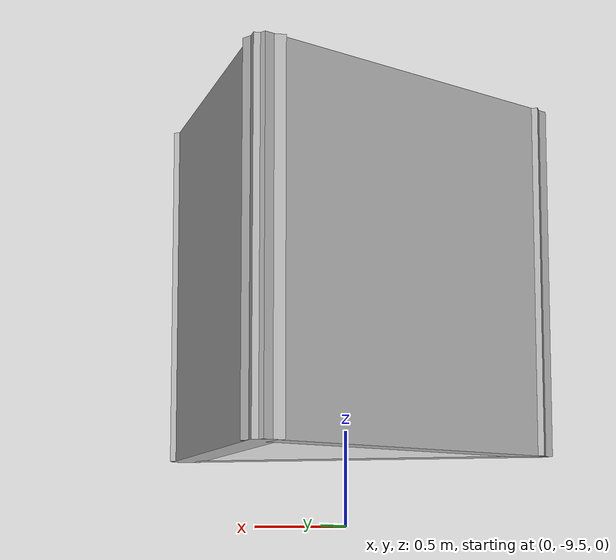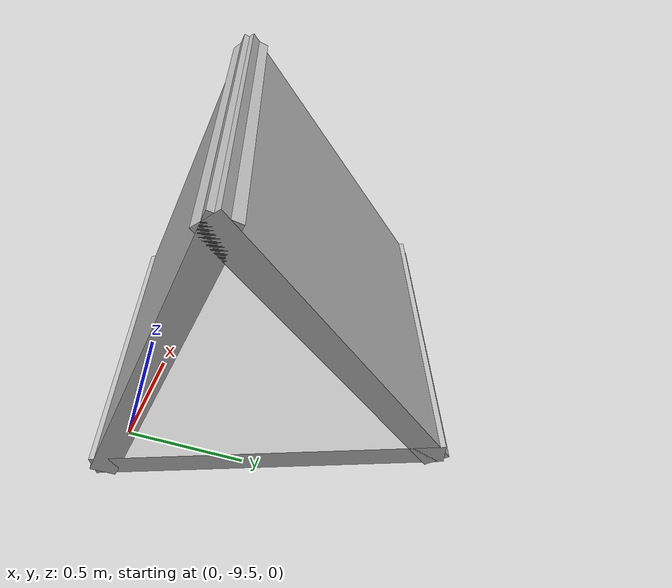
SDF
<?xml version='1.0'?>
<sdf version='1.7'>
  <model name='gun_man'>
    <pose>-0.057195 -4.78727 0 0 -0 0</pose>
    <link name='Wall_16'>
      <collision name='Wall_16_Collision'>
        <geometry>
          <box>
            <size>2 0.15 1.8</size>
          </box>
        </geometry>
        <pose>0 0 1.25 0 -0 0</pose>
      </collision>
      <visual name='Wall_16_Visual'>
        <pose>0 0 1.25 0 -0 0</pose>
        <geometry>
          <box>
            <size>2 0.15 1.8</size>
          </box>
        </geometry>
        <material>
          <script>
            <uri>model://gun_man/materials/scripts</uri>
            <uri>model://gun_man/materials/textures</uri>
            <name>Mark/Diffuse_h</name>
          </script>
        </material>
        <meta>
          <layer>0</layer>
        </meta>
      </visual>
      <pose>-0.4625 -3.88374 0 0 -0 -2.0944</pose>
    </link>
    <link name='Wall_17'>
      <collision name='Wall_17_Collision'>
        <geometry>
          <box>
            <size>2 0.15 1.8</size>
          </box>
        </geometry>
        <pose>0 0 1.25 0 -0 0</pose>
      </collision>
      <visual name='Wall_17_Visual'>
        <pose>0 0 1.25 0 -0 0</pose>
        <geometry>
          <box>
            <size>2 0.15 1.8</size>
          </box>
        </geometry>
        <material>
          <script>
            <uri>model://gun_man/materials/scripts</uri>
            <uri>model://gun_man/materials/textures</uri>
            <name>Mark/Diffuse_h</name>
          </script>
        </material>
        <meta>
          <layer>0</layer>
        </meta>
      </visual>
      <pose>0 -4.68482 0 0 -0 0</pose>
    </link>
    <link name='Wall_18'>
      <collision name='Wall_18_Collision'>
        <geometry>
          <box>
            <size>2 0.15 1.8</size>
          </box>
        </geometry>
        <pose>0 0 1.25 0 -0 0</pose>
      </collision>
      <visual name='Wall_18_Visual'>
        <pose>0 0 1.25 0 -0 0</pose>
        <geometry>
          <box>
            <size>2 0.15 1.8</size>
          </box>
        </geometry>
      <material>
        <script>
          <uri>model://gun_man/materials/scripts</uri>
          <uri>model://gun_man/materials/textures</uri>
          <name>Mark/Diffuse_h</name>
        </script>
      </material>
        <meta>
          <layer>0</layer>
        </meta>
      </visual>
      <pose>0.4625 -3.88374 0 0 -0 2.0944</pose>
    </link>
    <static>1</static>
  </model>
</sdf>
